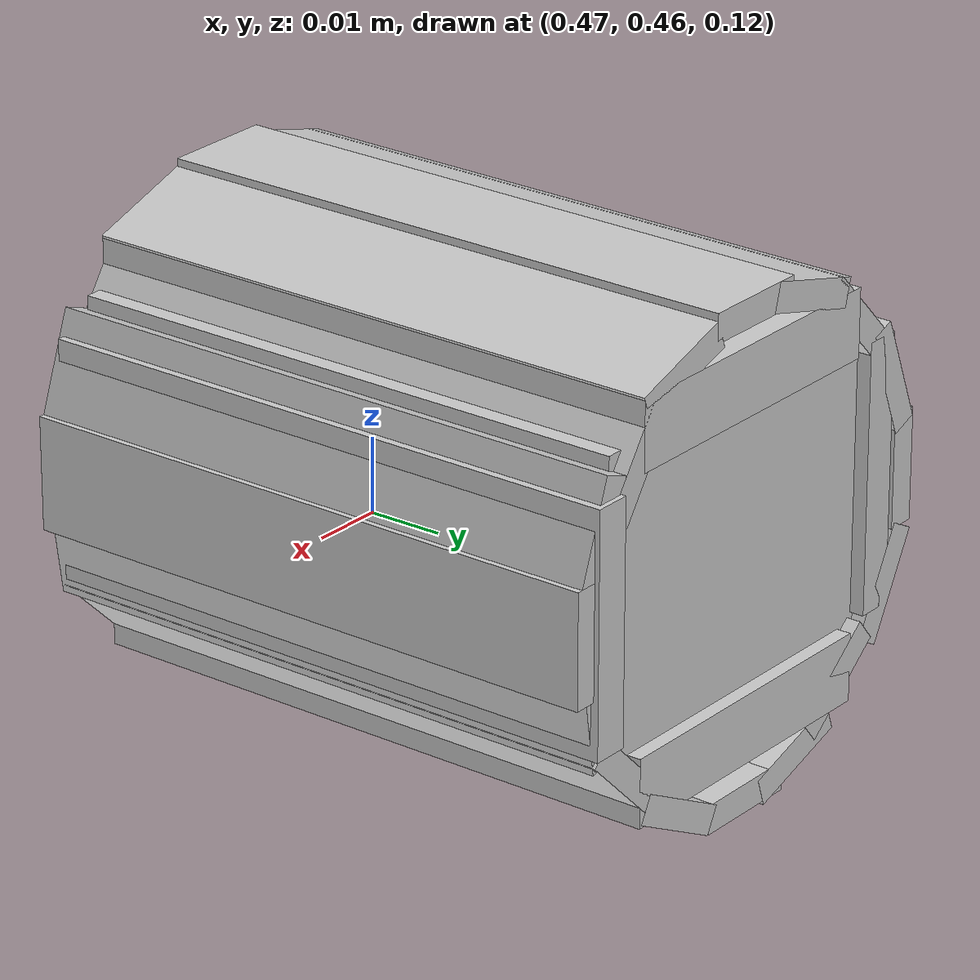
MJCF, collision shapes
<?xml version='1.0' encoding='utf-8'?>
<mujoco>
  <compiler autolimits="true" />
  <default>
    <geom density="1200" />
  </default>
  <asset>
    <texture file="/root/repo/LIBERO/libero/libero/assets/stable_hope_objects/alphabet_soup/texture_map.png" name="p2_tex-textured" type="2d" />
    <material name="p2_textured" reflectance="0.5" texrepeat="1 1" texture="p2_tex-textured" texuniform="false" />
    <mesh file="/root/repo/LIBERO/libero/libero/assets/stable_hope_objects/alphabet_soup/visual/textured_vis.msh" name="p2_textured_vis" scale="0.01 0.01 0.01" />
  </asset>
  <worldbody>
    <body pos="0.5 0.5 0.15" quat="1.0 0.0 0.0 0.0">
      <body name="p2_object">
        <geom solimp="0.998 0.998 0.001" solref="0.001 1" density="100" friction="0.95 0.3 0.1" type="mesh" mesh="p2_textured_vis" conaffinity="0" contype="0" group="1" material="p2_textured" />
        <geom solimp="0.998 0.998 0.001" solref="0.001 1" density="100" friction="0.95 0.3 0.1" type="box" pos="0.00000 -0.00104 -0.00235" quat="0.50000 -0.50000 0.50000 0.50000" size="0.01874 0.02352 0.03625" group="0" rgba="0.8 0.8 0.8 0.3" />
        <geom solimp="0.998 0.998 0.001" solref="0.001 1" density="100" friction="0.95 0.3 0.1" type="box" pos="0.02599 -0.00000 -0.00209" quat="0.70711 0.70711 0.00000 -0.00000" size="0.00226 0.01471 0.03760" group="0" rgba="0.8 0.8 0.8 0.3" />
        <geom solimp="0.998 0.998 0.001" solref="0.001 1" density="100" friction="0.95 0.3 0.1" type="box" pos="-0.02470 -0.00060 -0.00209" quat="0.70711 0.70711 0.00000 -0.00000" size="0.00226 0.01662 0.03760" group="0" rgba="0.8 0.8 0.8 0.3" />
        <geom solimp="0.998 0.998 0.001" solref="0.001 1" density="100" friction="0.95 0.3 0.1" type="box" pos="-0.00012 -0.00060 -0.02413" quat="0.50000 -0.50000 0.50000 0.50000" size="0.00421 0.01985 0.03760" group="0" rgba="0.8 0.8 0.8 0.3" />
        <geom solimp="0.998 0.998 0.001" solref="0.001 1" density="100" friction="0.95 0.3 0.1" type="box" pos="-0.00012 -0.00060 0.01776" quat="0.50000 -0.50000 0.50000 0.50000" size="0.00421 0.01985 0.03760" group="0" rgba="0.8 0.8 0.8 0.3" />
        <geom solimp="0.998 0.998 0.001" solref="0.001 1" density="100" friction="0.95 0.3 0.1" type="box" pos="-0.00012 -0.00060 -0.03260" quat="0.50000 0.50000 0.50000 -0.50000" size="0.00177 0.00694 0.03760" group="0" rgba="0.8 0.8 0.8 0.3" />
        <geom solimp="0.998 0.998 0.001" solref="0.001 1" density="100" friction="0.95 0.3 0.1" type="box" pos="-0.00012 -0.00060 0.02575" quat="0.50000 0.50000 0.50000 -0.50000" size="0.00177 0.00694 0.03760" group="0" rgba="0.8 0.8 0.8 0.3" />
        <geom solimp="0.998 0.998 0.001" solref="0.001 1" density="100" friction="0.95 0.3 0.1" type="box" pos="-0.02944 -0.00060 -0.00291" quat="0.00030 0.00030 -0.70711 0.70711" size="0.00177 0.00694 0.03760" group="0" rgba="0.8 0.8 0.8 0.3" />
        <geom solimp="0.998 0.998 0.001" solref="0.001 1" density="100" friction="0.95 0.3 0.1" type="box" pos="0.02931 -0.00060 -0.00291" quat="0.70711 0.70711 0.00030 -0.00030" size="0.00177 0.00694 0.03760" group="0" rgba="0.8 0.8 0.8 0.3" />
        <geom solimp="0.998 0.998 0.001" solref="0.001 1" density="100" friction="0.95 0.3 0.1" type="box" pos="0.02689 -0.00060 0.00853" quat="0.69661 0.69661 -0.12141 0.12141" size="0.00177 0.00694 0.03760" group="0" rgba="0.8 0.8 0.8 0.3" />
        <geom solimp="0.998 0.998 0.001" solref="0.001 1" density="100" friction="0.95 0.3 0.1" type="box" pos="-0.02654 -0.00060 -0.01619" quat="0.16993 -0.16993 0.68638 0.68638" size="0.00177 0.00694 0.03760" group="0" rgba="0.8 0.8 0.8 0.3" />
        <geom solimp="0.998 0.998 0.001" solref="0.001 1" density="100" friction="0.95 0.3 0.1" type="box" pos="-0.01763 -0.00060 -0.02495" quat="0.30330 -0.30330 0.63875 0.63875" size="0.00177 0.00694 0.03760" group="0" rgba="0.8 0.8 0.8 0.3" />
        <geom solimp="0.998 0.998 0.001" solref="0.001 1" density="100" friction="0.95 0.3 0.1" type="box" pos="-0.00964 -0.00060 -0.03099" quat="0.41278 -0.41278 0.57412 0.57412" size="0.00177 0.00694 0.03760" group="0" rgba="0.8 0.8 0.8 0.3" />
        <geom solimp="0.998 0.998 0.001" solref="0.001 1" density="100" friction="0.95 0.3 0.1" type="box" pos="0.01270 -0.00060 0.02274" quat="0.41278 -0.41278 0.57412 0.57412" size="0.00177 0.00694 0.03760" group="0" rgba="0.8 0.8 0.8 0.3" />
        <geom solimp="0.998 0.998 0.001" solref="0.001 1" density="100" friction="0.95 0.3 0.1" type="box" pos="0.01240 -0.00060 -0.02961" quat="0.36902 0.36902 -0.60318 0.60318" size="0.00177 0.00694 0.03760" group="0" rgba="0.8 0.8 0.8 0.3" />
        <geom solimp="0.998 0.998 0.001" solref="0.001 1" density="100" friction="0.95 0.3 0.1" type="box" pos="0.02167 -0.00060 -0.02144" quat="0.65137 0.65137 0.27516 -0.27516" size="0.00177 0.00694 0.03760" group="0" rgba="0.8 0.8 0.8 0.3" />
        <geom solimp="0.998 0.998 0.001" solref="0.001 1" density="100" friction="0.95 0.3 0.1" type="box" pos="0.02696 -0.00099 -0.01169" quat="0.05205 0.05205 -0.70519 0.70519" size="0.00177 0.00694 0.03760" group="0" rgba="0.8 0.8 0.8 0.3" />
        <geom solimp="0.998 0.998 0.001" solref="0.001 1" density="100" friction="0.95 0.3 0.1" type="box" pos="-0.02700 -0.00060 0.00886" quat="0.13049 0.13049 -0.69496 0.69496" size="0.00177 0.00694 0.03760" group="0" rgba="0.8 0.8 0.8 0.3" />
        <geom solimp="0.998 0.998 0.001" solref="0.001 1" density="100" friction="0.95 0.3 0.1" type="box" pos="-0.02005 -0.00060 0.01808" quat="0.65572 0.65572 0.26463 -0.26463" size="0.00177 0.00694 0.03760" group="0" rgba="0.8 0.8 0.8 0.3" />
        <geom solimp="0.998 0.998 0.001" solref="0.001 1" density="100" friction="0.95 0.3 0.1" type="box" pos="0.02026 -0.00060 0.01494" quat="0.20946 -0.20946 0.67537 0.67537" size="0.00177 0.00694 0.03760" group="0" rgba="0.8 0.8 0.8 0.3" />
        <geom solimp="0.998 0.998 0.001" solref="0.001 1" density="100" friction="0.95 0.3 0.1" type="box" pos="-0.01084 -0.00060 0.02397" quat="0.56204 -0.56204 0.42908 0.42908" size="0.00177 0.00694 0.03760" group="0" rgba="0.8 0.8 0.8 0.3" />
      </body>
      <site rgba="0 0 0 0" size="0.005" pos="0 0 -0.04" name="p2_bottom_site" />
      <site rgba="0 0 0 0" size="0.005" pos="0 0 0.04" name="p2_top_site" />
      <site rgba="0 0 0 0" size="0.005" pos="0.025 0.025 0" name="p2_horizontal_radius_site" />
      <freejoint />
    </body>
  </worldbody>
</mujoco>
